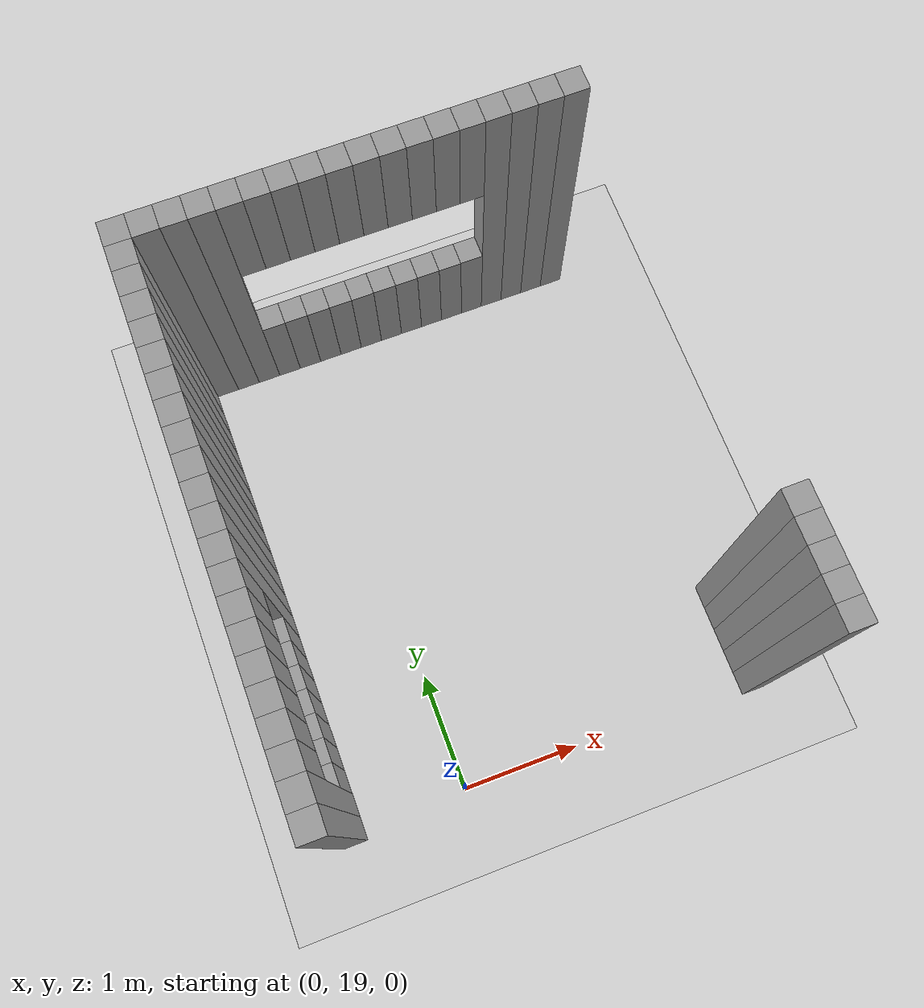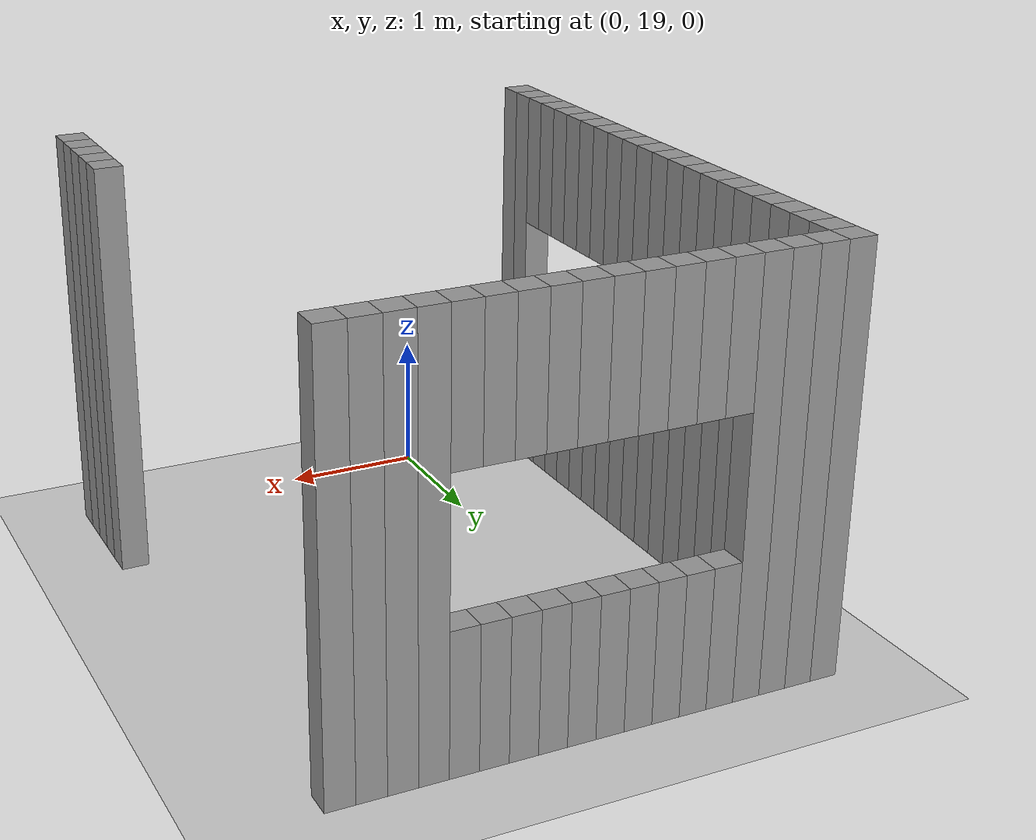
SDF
<sdf version="1.7">
 <world name="default">
  <model name="ground_plane">
   <static>1</static>
   <link name="link">
    <collision name="collision">
     <geometry><plane><normal>0 0 1</normal><size>100 100</size></plane></geometry>
     <surface>
      <contact><collide_bitmask>65535</collide_bitmask></contact>
      <friction><ode><mu>100</mu><mu2>50</mu2></ode></friction>
     </surface>
    </collision>
    <visual name="visual">
     <cast_shadows>0</cast_shadows>
     <geometry><plane><normal>0 0 1</normal><size>100 100</size></plane></geometry>
     <material>
      <script><uri>file://media/materials/scripts/gazebo.material</uri><name>Gazebo/Grey</name></script>
     </material>
    </visual>
   </link>
  </model>
  <model name="05222">
   <pose>-1 -1 0 0 -0 0</pose>
   <link name="Wall_945">
    <collision name="Wall_945_Collision">
     <geometry><box><size>0.2 0.2 3</size></box></geometry>
     <pose>0 0 1.5 0 -0 0</pose>
    </collision>
    <visual name="Wall_945_Visual">
     <pose>0 0 1.5 0 -0 0</pose>
     <geometry><box><size>0.2 0.2 3</size></box></geometry>
     <material>
      <script><uri>file://media/materials/scripts/gazebo.material</uri><name>Gazebo/Grey</name></script>
      <ambient>1 1 1 1</ambient>
     </material>
     <meta><layer>0</layer></meta>
    </visual>
    <pose>0.0 20.0 0 0 -0 0</pose>
   </link>
   <link name="Wall_946">
    <collision name="Wall_946_Collision">
     <geometry><box><size>0.2 0.2 3</size></box></geometry>
     <pose>0 0 1.5 0 -0 0</pose>
    </collision>
    <visual name="Wall_946_Visual">
     <pose>0 0 1.5 0 -0 0</pose>
     <geometry><box><size>0.2 0.2 3</size></box></geometry>
     <material>
      <script><uri>file://media/materials/scripts/gazebo.material</uri><name>Gazebo/Grey</name></script>
      <ambient>1 1 1 1</ambient>
     </material>
     <meta><layer>0</layer></meta>
    </visual>
    <pose>3.6 20.0 0 0 -0 0</pose>
   </link>
   <link name="Wall_950">
    <collision name="Wall_950_Collision">
     <geometry><box><size>0.2 0.2 3</size></box></geometry>
     <pose>0 0 1.5 0 -0 0</pose>
    </collision>
    <visual name="Wall_950_Visual">
     <pose>0 0 1.5 0 -0 0</pose>
     <geometry><box><size>0.2 0.2 3</size></box></geometry>
     <material>
      <script><uri>file://media/materials/scripts/gazebo.material</uri><name>Gazebo/Grey</name></script>
      <ambient>1 1 1 1</ambient>
     </material>
     <meta><layer>0</layer></meta>
    </visual>
    <pose>0.0 20.200000000000003 0 0 -0 0</pose>
   </link>
   <link name="Wall_951">
    <collision name="Wall_951_Collision">
     <geometry><box><size>0.2 0.2 3</size></box></geometry>
     <pose>0 0 1.5 0 -0 0</pose>
    </collision>
    <visual name="Wall_951_Visual">
     <pose>0 0 1.5 0 -0 0</pose>
     <geometry><box><size>0.2 0.2 3</size></box></geometry>
     <material>
      <script><uri>file://media/materials/scripts/gazebo.material</uri><name>Gazebo/Grey</name></script>
      <ambient>1 1 1 1</ambient>
     </material>
     <meta><layer>0</layer></meta>
    </visual>
    <pose>3.6 20.200000000000003 0 0 -0 0</pose>
   </link>
   <link name="Wall_955">
    <collision name="Wall_955_Collision">
     <geometry><box><size>0.2 0.2 1.0</size></box></geometry>
     <pose>0 0 0.5 0 -0 0</pose>
    </collision>
    <visual name="Wall_955_Visual">
     <pose>0 0 0.5 0 -0 0</pose>
     <geometry><box><size>0.2 0.2 1.0</size></box></geometry>
     <material>
      <script><uri>file://media/materials/scripts/gazebo.material</uri><name>Gazebo/Grey</name></script>
      <ambient>1 1 1 1</ambient>
     </material>
     <meta><layer>0</layer></meta>
    </visual>
    <pose>0.0 20.400000000000002 0 0 -0 0</pose>
   </link>
   <link name="Wall_956">
    <collision name="Wall_956_Collision">
     <geometry><box><size>0.2 0.2 1.0</size></box></geometry>
     <pose>0 0 2.5 0 -0 0</pose>
    </collision>
    <visual name="Wall_956_Visual">
     <pose>0 0 2.5 0 -0 0</pose>
     <geometry><box><size>0.2 0.2 1.0</size></box></geometry>
     <material>
      <script><uri>file://media/materials/scripts/gazebo.material</uri><name>Gazebo/Grey</name></script>
      <ambient>1 1 1 1</ambient>
     </material>
     <meta><layer>0</layer></meta>
    </visual>
    <pose>0.0 20.400000000000002 0 0 -0 0</pose>
   </link>
   <link name="Window_955">
    <collision name="Window_955_Collision">
     <geometry><box><size>0.2 0.2 1.0</size></box></geometry>
     <pose>0 0 1.5 0 -0 0</pose>
    </collision>
    <visual name="Wall_956_Visual">
     <pose>0 0 2.5 0 -0 0</pose>
     <geometry><box><size>0.2 0.2 1.0</size></box></geometry>
     <material>
      <script><uri>file://media/materials/scripts/gazebo.material</uri><name>Gazebo/Grey</name></script>
      <ambient>1 1 1 1</ambient>
     </material>
     <meta><layer>0</layer></meta>
    </visual>
    <pose>0.0 20.400000000000002 0 0 -0 0</pose>
   </link>
   <link name="Wall_957">
    <collision name="Wall_957_Collision">
     <geometry><box><size>0.2 0.2 3</size></box></geometry>
     <pose>0 0 1.5 0 -0 0</pose>
    </collision>
    <visual name="Wall_957_Visual">
     <pose>0 0 1.5 0 -0 0</pose>
     <geometry><box><size>0.2 0.2 3</size></box></geometry>
     <material>
      <script><uri>file://media/materials/scripts/gazebo.material</uri><name>Gazebo/Grey</name></script>
      <ambient>1 1 1 1</ambient>
     </material>
     <meta><layer>0</layer></meta>
    </visual>
    <pose>3.6 20.400000000000002 0 0 -0 0</pose>
   </link>
   <link name="Wall_961">
    <collision name="Wall_961_Collision">
     <geometry><box><size>0.2 0.2 1.0</size></box></geometry>
     <pose>0 0 0.5 0 -0 0</pose>
    </collision>
    <visual name="Wall_961_Visual">
     <pose>0 0 0.5 0 -0 0</pose>
     <geometry><box><size>0.2 0.2 1.0</size></box></geometry>
     <material>
      <script><uri>file://media/materials/scripts/gazebo.material</uri><name>Gazebo/Grey</name></script>
      <ambient>1 1 1 1</ambient>
     </material>
     <meta><layer>0</layer></meta>
    </visual>
    <pose>0.0 20.6 0 0 -0 0</pose>
   </link>
   <link name="Wall_962">
    <collision name="Wall_962_Collision">
     <geometry><box><size>0.2 0.2 1.0</size></box></geometry>
     <pose>0 0 2.5 0 -0 0</pose>
    </collision>
    <visual name="Wall_962_Visual">
     <pose>0 0 2.5 0 -0 0</pose>
     <geometry><box><size>0.2 0.2 1.0</size></box></geometry>
     <material>
      <script><uri>file://media/materials/scripts/gazebo.material</uri><name>Gazebo/Grey</name></script>
      <ambient>1 1 1 1</ambient>
     </material>
     <meta><layer>0</layer></meta>
    </visual>
    <pose>0.0 20.6 0 0 -0 0</pose>
   </link>
   <link name="Window_961">
    <collision name="Window_961_Collision">
     <geometry><box><size>0.2 0.2 1.0</size></box></geometry>
     <pose>0 0 1.5 0 -0 0</pose>
    </collision>
    <visual name="Wall_962_Visual">
     <pose>0 0 2.5 0 -0 0</pose>
     <geometry><box><size>0.2 0.2 1.0</size></box></geometry>
     <material>
      <script><uri>file://media/materials/scripts/gazebo.material</uri><name>Gazebo/Grey</name></script>
      <ambient>1 1 1 1</ambient>
     </material>
     <meta><layer>0</layer></meta>
    </visual>
    <pose>0.0 20.6 0 0 -0 0</pose>
   </link>
   <link name="Wall_963">
    <collision name="Wall_963_Collision">
     <geometry><box><size>0.2 0.2 3</size></box></geometry>
     <pose>0 0 1.5 0 -0 0</pose>
    </collision>
    <visual name="Wall_963_Visual">
     <pose>0 0 1.5 0 -0 0</pose>
     <geometry><box><size>0.2 0.2 3</size></box></geometry>
     <material>
      <script><uri>file://media/materials/scripts/gazebo.material</uri><name>Gazebo/Grey</name></script>
      <ambient>1 1 1 1</ambient>
     </material>
     <meta><layer>0</layer></meta>
    </visual>
    <pose>3.6 20.6 0 0 -0 0</pose>
   </link>
   <link name="Wall_967">
    <collision name="Wall_967_Collision">
     <geometry><box><size>0.2 0.2 1.0</size></box></geometry>
     <pose>0 0 0.5 0 -0 0</pose>
    </collision>
    <visual name="Wall_967_Visual">
     <pose>0 0 0.5 0 -0 0</pose>
     <geometry><box><size>0.2 0.2 1.0</size></box></geometry>
     <material>
      <script><uri>file://media/materials/scripts/gazebo.material</uri><name>Gazebo/Grey</name></script>
      <ambient>1 1 1 1</ambient>
     </material>
     <meta><layer>0</layer></meta>
    </visual>
    <pose>0.0 20.8 0 0 -0 0</pose>
   </link>
   <link name="Wall_968">
    <collision name="Wall_968_Collision">
     <geometry><box><size>0.2 0.2 1.0</size></box></geometry>
     <pose>0 0 2.5 0 -0 0</pose>
    </collision>
    <visual name="Wall_968_Visual">
     <pose>0 0 2.5 0 -0 0</pose>
     <geometry><box><size>0.2 0.2 1.0</size></box></geometry>
     <material>
      <script><uri>file://media/materials/scripts/gazebo.material</uri><name>Gazebo/Grey</name></script>
      <ambient>1 1 1 1</ambient>
     </material>
     <meta><layer>0</layer></meta>
    </visual>
    <pose>0.0 20.8 0 0 -0 0</pose>
   </link>
   <link name="Window_967">
    <collision name="Window_967_Collision">
     <geometry><box><size>0.2 0.2 1.0</size></box></geometry>
     <pose>0 0 1.5 0 -0 0</pose>
    </collision>
    <visual name="Wall_968_Visual">
     <pose>0 0 2.5 0 -0 0</pose>
     <geometry><box><size>0.2 0.2 1.0</size></box></geometry>
     <material>
      <script><uri>file://media/materials/scripts/gazebo.material</uri><name>Gazebo/Grey</name></script>
      <ambient>1 1 1 1</ambient>
     </material>
     <meta><layer>0</layer></meta>
    </visual>
    <pose>0.0 20.8 0 0 -0 0</pose>
   </link>
   <link name="Wall_969">
    <collision name="Wall_969_Collision">
     <geometry><box><size>0.2 0.2 3</size></box></geometry>
     <pose>0 0 1.5 0 -0 0</pose>
    </collision>
    <visual name="Wall_969_Visual">
     <pose>0 0 1.5 0 -0 0</pose>
     <geometry><box><size>0.2 0.2 3</size></box></geometry>
     <material>
      <script><uri>file://media/materials/scripts/gazebo.material</uri><name>Gazebo/Grey</name></script>
      <ambient>1 1 1 1</ambient>
     </material>
     <meta><layer>0</layer></meta>
    </visual>
    <pose>3.6 20.8 0 0 -0 0</pose>
   </link>
   <link name="Wall_973">
    <collision name="Wall_973_Collision">
     <geometry><box><size>0.2 0.2 1.0</size></box></geometry>
     <pose>0 0 0.5 0 -0 0</pose>
    </collision>
    <visual name="Wall_973_Visual">
     <pose>0 0 0.5 0 -0 0</pose>
     <geometry><box><size>0.2 0.2 1.0</size></box></geometry>
     <material>
      <script><uri>file://media/materials/scripts/gazebo.material</uri><name>Gazebo/Grey</name></script>
      <ambient>1 1 1 1</ambient>
     </material>
     <meta><layer>0</layer></meta>
    </visual>
    <pose>0.0 21.0 0 0 -0 0</pose>
   </link>
   <link name="Wall_974">
    <collision name="Wall_974_Collision">
     <geometry><box><size>0.2 0.2 1.0</size></box></geometry>
     <pose>0 0 2.5 0 -0 0</pose>
    </collision>
    <visual name="Wall_974_Visual">
     <pose>0 0 2.5 0 -0 0</pose>
     <geometry><box><size>0.2 0.2 1.0</size></box></geometry>
     <material>
      <script><uri>file://media/materials/scripts/gazebo.material</uri><name>Gazebo/Grey</name></script>
      <ambient>1 1 1 1</ambient>
     </material>
     <meta><layer>0</layer></meta>
    </visual>
    <pose>0.0 21.0 0 0 -0 0</pose>
   </link>
   <link name="Window_973">
    <collision name="Window_973_Collision">
     <geometry><box><size>0.2 0.2 1.0</size></box></geometry>
     <pose>0 0 1.5 0 -0 0</pose>
    </collision>
    <visual name="Wall_974_Visual">
     <pose>0 0 2.5 0 -0 0</pose>
     <geometry><box><size>0.2 0.2 1.0</size></box></geometry>
     <material>
      <script><uri>file://media/materials/scripts/gazebo.material</uri><name>Gazebo/Grey</name></script>
      <ambient>1 1 1 1</ambient>
     </material>
     <meta><layer>0</layer></meta>
    </visual>
    <pose>0.0 21.0 0 0 -0 0</pose>
   </link>
   <link name="Wall_979">
    <collision name="Wall_979_Collision">
     <geometry><box><size>0.2 0.2 1.0</size></box></geometry>
     <pose>0 0 0.5 0 -0 0</pose>
    </collision>
    <visual name="Wall_979_Visual">
     <pose>0 0 0.5 0 -0 0</pose>
     <geometry><box><size>0.2 0.2 1.0</size></box></geometry>
     <material>
      <script><uri>file://media/materials/scripts/gazebo.material</uri><name>Gazebo/Grey</name></script>
      <ambient>1 1 1 1</ambient>
     </material>
     <meta><layer>0</layer></meta>
    </visual>
    <pose>0.0 21.200000000000003 0 0 -0 0</pose>
   </link>
   <link name="Wall_980">
    <collision name="Wall_980_Collision">
     <geometry><box><size>0.2 0.2 1.0</size></box></geometry>
     <pose>0 0 2.5 0 -0 0</pose>
    </collision>
    <visual name="Wall_980_Visual">
     <pose>0 0 2.5 0 -0 0</pose>
     <geometry><box><size>0.2 0.2 1.0</size></box></geometry>
     <material>
      <script><uri>file://media/materials/scripts/gazebo.material</uri><name>Gazebo/Grey</name></script>
      <ambient>1 1 1 1</ambient>
     </material>
     <meta><layer>0</layer></meta>
    </visual>
    <pose>0.0 21.200000000000003 0 0 -0 0</pose>
   </link>
   <link name="Window_979">
    <collision name="Window_979_Collision">
     <geometry><box><size>0.2 0.2 1.0</size></box></geometry>
     <pose>0 0 1.5 0 -0 0</pose>
    </collision>
    <visual name="Wall_980_Visual">
     <pose>0 0 2.5 0 -0 0</pose>
     <geometry><box><size>0.2 0.2 1.0</size></box></geometry>
     <material>
      <script><uri>file://media/materials/scripts/gazebo.material</uri><name>Gazebo/Grey</name></script>
      <ambient>1 1 1 1</ambient>
     </material>
     <meta><layer>0</layer></meta>
    </visual>
    <pose>0.0 21.200000000000003 0 0 -0 0</pose>
   </link>
   <link name="Wall_986">
    <collision name="Wall_986_Collision">
     <geometry><box><size>0.2 0.2 1.0</size></box></geometry>
     <pose>0 0 0.5 0 -0 0</pose>
    </collision>
    <visual name="Wall_986_Visual">
     <pose>0 0 0.5 0 -0 0</pose>
     <geometry><box><size>0.2 0.2 1.0</size></box></geometry>
     <material>
      <script><uri>file://media/materials/scripts/gazebo.material</uri><name>Gazebo/Grey</name></script>
      <ambient>1 1 1 1</ambient>
     </material>
     <meta><layer>0</layer></meta>
    </visual>
    <pose>0.0 21.400000000000002 0 0 -0 0</pose>
   </link>
   <link name="Wall_987">
    <collision name="Wall_987_Collision">
     <geometry><box><size>0.2 0.2 1.0</size></box></geometry>
     <pose>0 0 2.5 0 -0 0</pose>
    </collision>
    <visual name="Wall_987_Visual">
     <pose>0 0 2.5 0 -0 0</pose>
     <geometry><box><size>0.2 0.2 1.0</size></box></geometry>
     <material>
      <script><uri>file://media/materials/scripts/gazebo.material</uri><name>Gazebo/Grey</name></script>
      <ambient>1 1 1 1</ambient>
     </material>
     <meta><layer>0</layer></meta>
    </visual>
    <pose>0.0 21.400000000000002 0 0 -0 0</pose>
   </link>
   <link name="Window_986">
    <collision name="Window_986_Collision">
     <geometry><box><size>0.2 0.2 1.0</size></box></geometry>
     <pose>0 0 1.5 0 -0 0</pose>
    </collision>
    <visual name="Wall_987_Visual">
     <pose>0 0 2.5 0 -0 0</pose>
     <geometry><box><size>0.2 0.2 1.0</size></box></geometry>
     <material>
      <script><uri>file://media/materials/scripts/gazebo.material</uri><name>Gazebo/Grey</name></script>
      <ambient>1 1 1 1</ambient>
     </material>
     <meta><layer>0</layer></meta>
    </visual>
    <pose>0.0 21.400000000000002 0 0 -0 0</pose>
   </link>
   <link name="Wall_993">
    <collision name="Wall_993_Collision">
     <geometry><box><size>0.2 0.2 1.0</size></box></geometry>
     <pose>0 0 0.5 0 -0 0</pose>
    </collision>
    <visual name="Wall_993_Visual">
     <pose>0 0 0.5 0 -0 0</pose>
     <geometry><box><size>0.2 0.2 1.0</size></box></geometry>
     <material>
      <script><uri>file://media/materials/scripts/gazebo.material</uri><name>Gazebo/Grey</name></script>
      <ambient>1 1 1 1</ambient>
     </material>
     <meta><layer>0</layer></meta>
    </visual>
    <pose>0.0 21.6 0 0 -0 0</pose>
   </link>
   <link name="Wall_994">
    <collision name="Wall_994_Collision">
     <geometry><box><size>0.2 0.2 1.0</size></box></geometry>
     <pose>0 0 2.5 0 -0 0</pose>
    </collision>
    <visual name="Wall_994_Visual">
     <pose>0 0 2.5 0 -0 0</pose>
     <geometry><box><size>0.2 0.2 1.0</size></box></geometry>
     <material>
      <script><uri>file://media/materials/scripts/gazebo.material</uri><name>Gazebo/Grey</name></script>
      <ambient>1 1 1 1</ambient>
     </material>
     <meta><layer>0</layer></meta>
    </visual>
    <pose>0.0 21.6 0 0 -0 0</pose>
   </link>
   <link name="Window_993">
    <collision name="Window_993_Collision">
     <geometry><box><size>0.2 0.2 1.0</size></box></geometry>
     <pose>0 0 1.5 0 -0 0</pose>
    </collision>
    <visual name="Wall_994_Visual">
     <pose>0 0 2.5 0 -0 0</pose>
     <geometry><box><size>0.2 0.2 1.0</size></box></geometry>
     <material>
      <script><uri>file://media/materials/scripts/gazebo.material</uri><name>Gazebo/Grey</name></script>
      <ambient>1 1 1 1</ambient>
     </material>
     <meta><layer>0</layer></meta>
    </visual>
    <pose>0.0 21.6 0 0 -0 0</pose>
   </link>
   <link name="Wall_1000">
    <collision name="Wall_1000_Collision">
     <geometry><box><size>0.2 0.2 3</size></box></geometry>
     <pose>0 0 1.5 0 -0 0</pose>
    </collision>
    <visual name="Wall_1000_Visual">
     <pose>0 0 1.5 0 -0 0</pose>
     <geometry><box><size>0.2 0.2 3</size></box></geometry>
     <material>
      <script><uri>file://media/materials/scripts/gazebo.material</uri><name>Gazebo/Grey</name></script>
      <ambient>1 1 1 1</ambient>
     </material>
     <meta><layer>0</layer></meta>
    </visual>
    <pose>0.0 21.8 0 0 -0 0</pose>
   </link>
   <link name="Wall_1006">
    <collision name="Wall_1006_Collision">
     <geometry><box><size>0.2 0.2 3</size></box></geometry>
     <pose>0 0 1.5 0 -0 0</pose>
    </collision>
    <visual name="Wall_1006_Visual">
     <pose>0 0 1.5 0 -0 0</pose>
     <geometry><box><size>0.2 0.2 3</size></box></geometry>
     <material>
      <script><uri>file://media/materials/scripts/gazebo.material</uri><name>Gazebo/Grey</name></script>
      <ambient>1 1 1 1</ambient>
     </material>
     <meta><layer>0</layer></meta>
    </visual>
    <pose>0.0 22.0 0 0 -0 0</pose>
   </link>
   <link name="Wall_1012">
    <collision name="Wall_1012_Collision">
     <geometry><box><size>0.2 0.2 3</size></box></geometry>
     <pose>0 0 1.5 0 -0 0</pose>
    </collision>
    <visual name="Wall_1012_Visual">
     <pose>0 0 1.5 0 -0 0</pose>
     <geometry><box><size>0.2 0.2 3</size></box></geometry>
     <material>
      <script><uri>file://media/materials/scripts/gazebo.material</uri><name>Gazebo/Grey</name></script>
      <ambient>1 1 1 1</ambient>
     </material>
     <meta><layer>0</layer></meta>
    </visual>
    <pose>0.0 22.200000000000003 0 0 -0 0</pose>
   </link>
   <link name="Wall_1018">
    <collision name="Wall_1018_Collision">
     <geometry><box><size>0.2 0.2 3</size></box></geometry>
     <pose>0 0 1.5 0 -0 0</pose>
    </collision>
    <visual name="Wall_1018_Visual">
     <pose>0 0 1.5 0 -0 0</pose>
     <geometry><box><size>0.2 0.2 3</size></box></geometry>
     <material>
      <script><uri>file://media/materials/scripts/gazebo.material</uri><name>Gazebo/Grey</name></script>
      <ambient>1 1 1 1</ambient>
     </material>
     <meta><layer>0</layer></meta>
    </visual>
    <pose>0.0 22.400000000000002 0 0 -0 0</pose>
   </link>
   <link name="Wall_1024">
    <collision name="Wall_1024_Collision">
     <geometry><box><size>0.2 0.2 3</size></box></geometry>
     <pose>0 0 1.5 0 -0 0</pose>
    </collision>
    <visual name="Wall_1024_Visual">
     <pose>0 0 1.5 0 -0 0</pose>
     <geometry><box><size>0.2 0.2 3</size></box></geometry>
     <material>
      <script><uri>file://media/materials/scripts/gazebo.material</uri><name>Gazebo/Grey</name></script>
      <ambient>1 1 1 1</ambient>
     </material>
     <meta><layer>0</layer></meta>
    </visual>
    <pose>0.0 22.6 0 0 -0 0</pose>
   </link>
   <link name="Wall_1030">
    <collision name="Wall_1030_Collision">
     <geometry><box><size>0.2 0.2 3</size></box></geometry>
     <pose>0 0 1.5 0 -0 0</pose>
    </collision>
    <visual name="Wall_1030_Visual">
     <pose>0 0 1.5 0 -0 0</pose>
     <geometry><box><size>0.2 0.2 3</size></box></geometry>
     <material>
      <script><uri>file://media/materials/scripts/gazebo.material</uri><name>Gazebo/Grey</name></script>
      <ambient>1 1 1 1</ambient>
     </material>
     <meta><layer>0</layer></meta>
    </visual>
    <pose>0.0 22.8 0 0 -0 0</pose>
   </link>
   <link name="Wall_1036">
    <collision name="Wall_1036_Collision">
     <geometry><box><size>0.2 0.2 3</size></box></geometry>
     <pose>0 0 1.5 0 -0 0</pose>
    </collision>
    <visual name="Wall_1036_Visual">
     <pose>0 0 1.5 0 -0 0</pose>
     <geometry><box><size>0.2 0.2 3</size></box></geometry>
     <material>
      <script><uri>file://media/materials/scripts/gazebo.material</uri><name>Gazebo/Grey</name></script>
      <ambient>1 1 1 1</ambient>
     </material>
     <meta><layer>0</layer></meta>
    </visual>
    <pose>0.0 23.0 0 0 -0 0</pose>
   </link>
   <link name="Wall_1042">
    <collision name="Wall_1042_Collision">
     <geometry><box><size>0.2 0.2 3</size></box></geometry>
     <pose>0 0 1.5 0 -0 0</pose>
    </collision>
    <visual name="Wall_1042_Visual">
     <pose>0 0 1.5 0 -0 0</pose>
     <geometry><box><size>0.2 0.2 3</size></box></geometry>
     <material>
      <script><uri>file://media/materials/scripts/gazebo.material</uri><name>Gazebo/Grey</name></script>
      <ambient>1 1 1 1</ambient>
     </material>
     <meta><layer>0</layer></meta>
    </visual>
    <pose>0.0 23.200000000000003 0 0 -0 0</pose>
   </link>
   <link name="Wall_1047">
    <collision name="Wall_1047_Collision">
     <geometry><box><size>0.2 0.2 3</size></box></geometry>
     <pose>0 0 1.5 0 -0 0</pose>
    </collision>
    <visual name="Wall_1047_Visual">
     <pose>0 0 1.5 0 -0 0</pose>
     <geometry><box><size>0.2 0.2 3</size></box></geometry>
     <material>
      <script><uri>file://media/materials/scripts/gazebo.material</uri><name>Gazebo/Grey</name></script>
      <ambient>1 1 1 1</ambient>
     </material>
     <meta><layer>0</layer></meta>
    </visual>
    <pose>0.0 23.400000000000002 0 0 -0 0</pose>
   </link>
   <link name="Wall_1052">
    <collision name="Wall_1052_Collision">
     <geometry><box><size>0.2 0.2 3</size></box></geometry>
     <pose>0 0 1.5 0 -0 0</pose>
    </collision>
    <visual name="Wall_1052_Visual">
     <pose>0 0 1.5 0 -0 0</pose>
     <geometry><box><size>0.2 0.2 3</size></box></geometry>
     <material>
      <script><uri>file://media/materials/scripts/gazebo.material</uri><name>Gazebo/Grey</name></script>
      <ambient>1 1 1 1</ambient>
     </material>
     <meta><layer>0</layer></meta>
    </visual>
    <pose>0.0 23.6 0 0 -0 0</pose>
   </link>
   <link name="Wall_1057">
    <collision name="Wall_1057_Collision">
     <geometry><box><size>0.2 0.2 3</size></box></geometry>
     <pose>0 0 1.5 0 -0 0</pose>
    </collision>
    <visual name="Wall_1057_Visual">
     <pose>0 0 1.5 0 -0 0</pose>
     <geometry><box><size>0.2 0.2 3</size></box></geometry>
     <material>
      <script><uri>file://media/materials/scripts/gazebo.material</uri><name>Gazebo/Grey</name></script>
      <ambient>1 1 1 1</ambient>
     </material>
     <meta><layer>0</layer></meta>
    </visual>
    <pose>0.0 23.8 0 0 -0 0</pose>
   </link>
   <link name="Wall_1062">
    <collision name="Wall_1062_Collision">
     <geometry><box><size>0.2 0.2 3</size></box></geometry>
     <pose>0 0 1.5 0 -0 0</pose>
    </collision>
    <visual name="Wall_1062_Visual">
     <pose>0 0 1.5 0 -0 0</pose>
     <geometry><box><size>0.2 0.2 3</size></box></geometry>
     <material>
      <script><uri>file://media/materials/scripts/gazebo.material</uri><name>Gazebo/Grey</name></script>
      <ambient>1 1 1 1</ambient>
     </material>
     <meta><layer>0</layer></meta>
    </visual>
    <pose>0.0 24.0 0 0 -0 0</pose>
   </link>
   <link name="Wall_1067">
    <collision name="Wall_1067_Collision">
     <geometry><box><size>0.2 0.2 3</size></box></geometry>
     <pose>0 0 1.5 0 -0 0</pose>
    </collision>
    <visual name="Wall_1067_Visual">
     <pose>0 0 1.5 0 -0 0</pose>
     <geometry><box><size>0.2 0.2 3</size></box></geometry>
     <material>
      <script><uri>file://media/materials/scripts/gazebo.material</uri><name>Gazebo/Grey</name></script>
      <ambient>1 1 1 1</ambient>
     </material>
     <meta><layer>0</layer></meta>
    </visual>
    <pose>0.0 24.200000000000003 0 0 -0 0</pose>
   </link>
   <link name="Wall_1068">
    <collision name="Wall_1068_Collision">
     <geometry><box><size>0.2 0.2 3</size></box></geometry>
     <pose>0 0 1.5 0 -0 0</pose>
    </collision>
    <visual name="Wall_1068_Visual">
     <pose>0 0 1.5 0 -0 0</pose>
     <geometry><box><size>0.2 0.2 3</size></box></geometry>
     <material>
      <script><uri>file://media/materials/scripts/gazebo.material</uri><name>Gazebo/Grey</name></script>
      <ambient>1 1 1 1</ambient>
     </material>
     <meta><layer>0</layer></meta>
    </visual>
    <pose>0.2 24.200000000000003 0 0 -0 0</pose>
   </link>
   <link name="Wall_1069">
    <collision name="Wall_1069_Collision">
     <geometry><box><size>0.2 0.2 3</size></box></geometry>
     <pose>0 0 1.5 0 -0 0</pose>
    </collision>
    <visual name="Wall_1069_Visual">
     <pose>0 0 1.5 0 -0 0</pose>
     <geometry><box><size>0.2 0.2 3</size></box></geometry>
     <material>
      <script><uri>file://media/materials/scripts/gazebo.material</uri><name>Gazebo/Grey</name></script>
      <ambient>1 1 1 1</ambient>
     </material>
     <meta><layer>0</layer></meta>
    </visual>
    <pose>0.4 24.200000000000003 0 0 -0 0</pose>
   </link>
   <link name="Wall_1070">
    <collision name="Wall_1070_Collision">
     <geometry><box><size>0.2 0.2 3</size></box></geometry>
     <pose>0 0 1.5 0 -0 0</pose>
    </collision>
    <visual name="Wall_1070_Visual">
     <pose>0 0 1.5 0 -0 0</pose>
     <geometry><box><size>0.2 0.2 3</size></box></geometry>
     <material>
      <script><uri>file://media/materials/scripts/gazebo.material</uri><name>Gazebo/Grey</name></script>
      <ambient>1 1 1 1</ambient>
     </material>
     <meta><layer>0</layer></meta>
    </visual>
    <pose>0.6000000000000001 24.200000000000003 0 0 -0 0</pose>
   </link>
   <link name="Wall_1071">
    <collision name="Wall_1071_Collision">
     <geometry><box><size>0.2 0.2 1.0</size></box></geometry>
     <pose>0 0 0.5 0 -0 0</pose>
    </collision>
    <visual name="Wall_1071_Visual">
     <pose>0 0 0.5 0 -0 0</pose>
     <geometry><box><size>0.2 0.2 1.0</size></box></geometry>
     <material>
      <script><uri>file://media/materials/scripts/gazebo.material</uri><name>Gazebo/Grey</name></script>
      <ambient>1 1 1 1</ambient>
     </material>
     <meta><layer>0</layer></meta>
    </visual>
    <pose>0.8 24.200000000000003 0 0 -0 0</pose>
   </link>
   <link name="Wall_1072">
    <collision name="Wall_1072_Collision">
     <geometry><box><size>0.2 0.2 1.0</size></box></geometry>
     <pose>0 0 2.5 0 -0 0</pose>
    </collision>
    <visual name="Wall_1072_Visual">
     <pose>0 0 2.5 0 -0 0</pose>
     <geometry><box><size>0.2 0.2 1.0</size></box></geometry>
     <material>
      <script><uri>file://media/materials/scripts/gazebo.material</uri><name>Gazebo/Grey</name></script>
      <ambient>1 1 1 1</ambient>
     </material>
     <meta><layer>0</layer></meta>
    </visual>
    <pose>0.8 24.200000000000003 0 0 -0 0</pose>
   </link>
   <link name="Window_1071">
    <collision name="Window_1071_Collision">
     <geometry><box><size>0.2 0.2 1.0</size></box></geometry>
     <pose>0 0 1.5 0 -0 0</pose>
    </collision>
    <visual name="Wall_1072_Visual">
     <pose>0 0 2.5 0 -0 0</pose>
     <geometry><box><size>0.2 0.2 1.0</size></box></geometry>
     <material>
      <script><uri>file://media/materials/scripts/gazebo.material</uri><name>Gazebo/Grey</name></script>
      <ambient>1 1 1 1</ambient>
     </material>
     <meta><layer>0</layer></meta>
    </visual>
    <pose>0.8 24.200000000000003 0 0 -0 0</pose>
   </link>
   <link name="Wall_1073">
    <collision name="Wall_1073_Collision">
     <geometry><box><size>0.2 0.2 1.0</size></box></geometry>
     <pose>0 0 0.5 0 -0 0</pose>
    </collision>
    <visual name="Wall_1073_Visual">
     <pose>0 0 0.5 0 -0 0</pose>
     <geometry><box><size>0.2 0.2 1.0</size></box></geometry>
     <material>
      <script><uri>file://media/materials/scripts/gazebo.material</uri><name>Gazebo/Grey</name></script>
      <ambient>1 1 1 1</ambient>
     </material>
     <meta><layer>0</layer></meta>
    </visual>
    <pose>1.0 24.200000000000003 0 0 -0 0</pose>
   </link>
   <link name="Wall_1074">
    <collision name="Wall_1074_Collision">
     <geometry><box><size>0.2 0.2 1.0</size></box></geometry>
     <pose>0 0 2.5 0 -0 0</pose>
    </collision>
    <visual name="Wall_1074_Visual">
     <pose>0 0 2.5 0 -0 0</pose>
     <geometry><box><size>0.2 0.2 1.0</size></box></geometry>
     <material>
      <script><uri>file://media/materials/scripts/gazebo.material</uri><name>Gazebo/Grey</name></script>
      <ambient>1 1 1 1</ambient>
     </material>
     <meta><layer>0</layer></meta>
    </visual>
    <pose>1.0 24.200000000000003 0 0 -0 0</pose>
   </link>
   <link name="Window_1073">
    <collision name="Window_1073_Collision">
     <geometry><box><size>0.2 0.2 1.0</size></box></geometry>
     <pose>0 0 1.5 0 -0 0</pose>
    </collision>
    <visual name="Wall_1074_Visual">
     <pose>0 0 2.5 0 -0 0</pose>
     <geometry><box><size>0.2 0.2 1.0</size></box></geometry>
     <material>
      <script><uri>file://media/materials/scripts/gazebo.material</uri><name>Gazebo/Grey</name></script>
      <ambient>1 1 1 1</ambient>
     </material>
     <meta><layer>0</layer></meta>
    </visual>
    <pose>1.0 24.200000000000003 0 0 -0 0</pose>
   </link>
   <link name="Wall_1075">
    <collision name="Wall_1075_Collision">
     <geometry><box><size>0.2 0.2 1.0</size></box></geometry>
     <pose>0 0 0.5 0 -0 0</pose>
    </collision>
    <visual name="Wall_1075_Visual">
     <pose>0 0 0.5 0 -0 0</pose>
     <geometry><box><size>0.2 0.2 1.0</size></box></geometry>
     <material>
      <script><uri>file://media/materials/scripts/gazebo.material</uri><name>Gazebo/Grey</name></script>
      <ambient>1 1 1 1</ambient>
     </material>
     <meta><layer>0</layer></meta>
    </visual>
    <pose>1.2000000000000002 24.200000000000003 0 0 -0 0</pose>
   </link>
   <link name="Wall_1076">
    <collision name="Wall_1076_Collision">
     <geometry><box><size>0.2 0.2 1.0</size></box></geometry>
     <pose>0 0 2.5 0 -0 0</pose>
    </collision>
    <visual name="Wall_1076_Visual">
     <pose>0 0 2.5 0 -0 0</pose>
     <geometry><box><size>0.2 0.2 1.0</size></box></geometry>
     <material>
      <script><uri>file://media/materials/scripts/gazebo.material</uri><name>Gazebo/Grey</name></script>
      <ambient>1 1 1 1</ambient>
     </material>
     <meta><layer>0</layer></meta>
    </visual>
    <pose>1.2000000000000002 24.200000000000003 0 0 -0 0</pose>
   </link>
   <link name="Window_1075">
    <collision name="Window_1075_Collision">
     <geometry><box><size>0.2 0.2 1.0</size></box></geometry>
     <pose>0 0 1.5 0 -0 0</pose>
    </collision>
    <visual name="Wall_1076_Visual">
     <pose>0 0 2.5 0 -0 0</pose>
     <geometry><box><size>0.2 0.2 1.0</size></box></geometry>
     <material>
      <script><uri>file://media/materials/scripts/gazebo.material</uri><name>Gazebo/Grey</name></script>
      <ambient>1 1 1 1</ambient>
     </material>
     <meta><layer>0</layer></meta>
    </visual>
    <pose>1.2000000000000002 24.200000000000003 0 0 -0 0</pose>
   </link>
   <link name="Wall_1077">
    <collision name="Wall_1077_Collision">
     <geometry><box><size>0.2 0.2 1.0</size></box></geometry>
     <pose>0 0 0.5 0 -0 0</pose>
    </collision>
    <visual name="Wall_1077_Visual">
     <pose>0 0 0.5 0 -0 0</pose>
     <geometry><box><size>0.2 0.2 1.0</size></box></geometry>
     <material>
      <script><uri>file://media/materials/scripts/gazebo.material</uri><name>Gazebo/Grey</name></script>
      <ambient>1 1 1 1</ambient>
     </material>
     <meta><layer>0</layer></meta>
    </visual>
    <pose>1.4000000000000001 24.200000000000003 0 0 -0 0</pose>
   </link>
   <link name="Wall_1078">
    <collision name="Wall_1078_Collision">
     <geometry><box><size>0.2 0.2 1.0</size></box></geometry>
     <pose>0 0 2.5 0 -0 0</pose>
    </collision>
    <visual name="Wall_1078_Visual">
     <pose>0 0 2.5 0 -0 0</pose>
     <geometry><box><size>0.2 0.2 1.0</size></box></geometry>
     <material>
      <script><uri>file://media/materials/scripts/gazebo.material</uri><name>Gazebo/Grey</name></script>
      <ambient>1 1 1 1</ambient>
     </material>
     <meta><layer>0</layer></meta>
    </visual>
    <pose>1.4000000000000001 24.200000000000003 0 0 -0 0</pose>
   </link>
   <link name="Window_1077">
    <collision name="Window_1077_Collision">
     <geometry><box><size>0.2 0.2 1.0</size></box></geometry>
     <pose>0 0 1.5 0 -0 0</pose>
    </collision>
    <visual name="Wall_1078_Visual">
     <pose>0 0 2.5 0 -0 0</pose>
     <geometry><box><size>0.2 0.2 1.0</size></box></geometry>
     <material>
      <script><uri>file://media/materials/scripts/gazebo.material</uri><name>Gazebo/Grey</name></script>
      <ambient>1 1 1 1</ambient>
     </material>
     <meta><layer>0</layer></meta>
    </visual>
    <pose>1.4000000000000001 24.200000000000003 0 0 -0 0</pose>
   </link>
   <link name="Wall_1079">
    <collision name="Wall_1079_Collision">
     <geometry><box><size>0.2 0.2 1.0</size></box></geometry>
     <pose>0 0 0.5 0 -0 0</pose>
    </collision>
    <visual name="Wall_1079_Visual">
     <pose>0 0 0.5 0 -0 0</pose>
     <geometry><box><size>0.2 0.2 1.0</size></box></geometry>
     <material>
      <script><uri>file://media/materials/scripts/gazebo.material</uri><name>Gazebo/Grey</name></script>
      <ambient>1 1 1 1</ambient>
     </material>
     <meta><layer>0</layer></meta>
    </visual>
    <pose>1.6 24.200000000000003 0 0 -0 0</pose>
   </link>
   <link name="Wall_1080">
    <collision name="Wall_1080_Collision">
     <geometry><box><size>0.2 0.2 1.0</size></box></geometry>
     <pose>0 0 2.5 0 -0 0</pose>
    </collision>
    <visual name="Wall_1080_Visual">
     <pose>0 0 2.5 0 -0 0</pose>
     <geometry><box><size>0.2 0.2 1.0</size></box></geometry>
     <material>
      <script><uri>file://media/materials/scripts/gazebo.material</uri><name>Gazebo/Grey</name></script>
      <ambient>1 1 1 1</ambient>
     </material>
     <meta><layer>0</layer></meta>
    </visual>
    <pose>1.6 24.200000000000003 0 0 -0 0</pose>
   </link>
   <link name="Window_1079">
    <collision name="Window_1079_Collision">
     <geometry><box><size>0.2 0.2 1.0</size></box></geometry>
     <pose>0 0 1.5 0 -0 0</pose>
    </collision>
    <visual name="Wall_1080_Visual">
     <pose>0 0 2.5 0 -0 0</pose>
     <geometry><box><size>0.2 0.2 1.0</size></box></geometry>
     <material>
      <script><uri>file://media/materials/scripts/gazebo.material</uri><name>Gazebo/Grey</name></script>
      <ambient>1 1 1 1</ambient>
     </material>
     <meta><layer>0</layer></meta>
    </visual>
    <pose>1.6 24.200000000000003 0 0 -0 0</pose>
   </link>
   <link name="Wall_1081">
    <collision name="Wall_1081_Collision">
     <geometry><box><size>0.2 0.2 1.0</size></box></geometry>
     <pose>0 0 0.5 0 -0 0</pose>
    </collision>
    <visual name="Wall_1081_Visual">
     <pose>0 0 0.5 0 -0 0</pose>
     <geometry><box><size>0.2 0.2 1.0</size></box></geometry>
     <material>
      <script><uri>file://media/materials/scripts/gazebo.material</uri><name>Gazebo/Grey</name></script>
      <ambient>1 1 1 1</ambient>
     </material>
     <meta><layer>0</layer></meta>
    </visual>
    <pose>1.8 24.200000000000003 0 0 -0 0</pose>
   </link>
   <link name="Wall_1082">
    <collision name="Wall_1082_Collision">
     <geometry><box><size>0.2 0.2 1.0</size></box></geometry>
     <pose>0 0 2.5 0 -0 0</pose>
    </collision>
    <visual name="Wall_1082_Visual">
     <pose>0 0 2.5 0 -0 0</pose>
     <geometry><box><size>0.2 0.2 1.0</size></box></geometry>
     <material>
      <script><uri>file://media/materials/scripts/gazebo.material</uri><name>Gazebo/Grey</name></script>
      <ambient>1 1 1 1</ambient>
     </material>
     <meta><layer>0</layer></meta>
    </visual>
    <pose>1.8 24.200000000000003 0 0 -0 0</pose>
   </link>
   <link name="Window_1081">
    <collision name="Window_1081_Collision">
     <geometry><box><size>0.2 0.2 1.0</size></box></geometry>
     <pose>0 0 1.5 0 -0 0</pose>
    </collision>
    <visual name="Wall_1082_Visual">
     <pose>0 0 2.5 0 -0 0</pose>
     <geometry><box><size>0.2 0.2 1.0</size></box></geometry>
     <material>
      <script><uri>file://media/materials/scripts/gazebo.material</uri><name>Gazebo/Grey</name></script>
      <ambient>1 1 1 1</ambient>
     </material>
     <meta><layer>0</layer></meta>
    </visual>
    <pose>1.8 24.200000000000003 0 0 -0 0</pose>
   </link>
   <link name="Wall_1083">
    <collision name="Wall_1083_Collision">
     <geometry><box><size>0.2 0.2 1.0</size></box></geometry>
     <pose>0 0 0.5 0 -0 0</pose>
    </collision>
    <visual name="Wall_1083_Visual">
     <pose>0 0 0.5 0 -0 0</pose>
     <geometry><box><size>0.2 0.2 1.0</size></box></geometry>
     <material>
      <script><uri>file://media/materials/scripts/gazebo.material</uri><name>Gazebo/Grey</name></script>
      <ambient>1 1 1 1</ambient>
     </material>
     <meta><layer>0</layer></meta>
    </visual>
    <pose>2.0 24.200000000000003 0 0 -0 0</pose>
   </link>
   <link name="Wall_1084">
    <collision name="Wall_1084_Collision">
     <geometry><box><size>0.2 0.2 1.0</size></box></geometry>
     <pose>0 0 2.5 0 -0 0</pose>
    </collision>
    <visual name="Wall_1084_Visual">
     <pose>0 0 2.5 0 -0 0</pose>
     <geometry><box><size>0.2 0.2 1.0</size></box></geometry>
     <material>
      <script><uri>file://media/materials/scripts/gazebo.material</uri><name>Gazebo/Grey</name></script>
      <ambient>1 1 1 1</ambient>
     </material>
     <meta><layer>0</layer></meta>
    </visual>
    <pose>2.0 24.200000000000003 0 0 -0 0</pose>
   </link>
   <link name="Window_1083">
    <collision name="Window_1083_Collision">
     <geometry><box><size>0.2 0.2 1.0</size></box></geometry>
     <pose>0 0 1.5 0 -0 0</pose>
    </collision>
    <visual name="Wall_1084_Visual">
     <pose>0 0 2.5 0 -0 0</pose>
     <geometry><box><size>0.2 0.2 1.0</size></box></geometry>
     <material>
      <script><uri>file://media/materials/scripts/gazebo.material</uri><name>Gazebo/Grey</name></script>
      <ambient>1 1 1 1</ambient>
     </material>
     <meta><layer>0</layer></meta>
    </visual>
    <pose>2.0 24.200000000000003 0 0 -0 0</pose>
   </link>
   <link name="Wall_1085">
    <collision name="Wall_1085_Collision">
     <geometry><box><size>0.2 0.2 1.0</size></box></geometry>
     <pose>0 0 0.5 0 -0 0</pose>
    </collision>
    <visual name="Wall_1085_Visual">
     <pose>0 0 0.5 0 -0 0</pose>
     <geometry><box><size>0.2 0.2 1.0</size></box></geometry>
     <material>
      <script><uri>file://media/materials/scripts/gazebo.material</uri><name>Gazebo/Grey</name></script>
      <ambient>1 1 1 1</ambient>
     </material>
     <meta><layer>0</layer></meta>
    </visual>
    <pose>2.2 24.200000000000003 0 0 -0 0</pose>
   </link>
   <link name="Wall_1086">
    <collision name="Wall_1086_Collision">
     <geometry><box><size>0.2 0.2 1.0</size></box></geometry>
     <pose>0 0 2.5 0 -0 0</pose>
    </collision>
    <visual name="Wall_1086_Visual">
     <pose>0 0 2.5 0 -0 0</pose>
     <geometry><box><size>0.2 0.2 1.0</size></box></geometry>
     <material>
      <script><uri>file://media/materials/scripts/gazebo.material</uri><name>Gazebo/Grey</name></script>
      <ambient>1 1 1 1</ambient>
     </material>
     <meta><layer>0</layer></meta>
    </visual>
    <pose>2.2 24.200000000000003 0 0 -0 0</pose>
   </link>
   <link name="Window_1085">
    <collision name="Window_1085_Collision">
     <geometry><box><size>0.2 0.2 1.0</size></box></geometry>
     <pose>0 0 1.5 0 -0 0</pose>
    </collision>
    <visual name="Wall_1086_Visual">
     <pose>0 0 2.5 0 -0 0</pose>
     <geometry><box><size>0.2 0.2 1.0</size></box></geometry>
     <material>
      <script><uri>file://media/materials/scripts/gazebo.material</uri><name>Gazebo/Grey</name></script>
      <ambient>1 1 1 1</ambient>
     </material>
     <meta><layer>0</layer></meta>
    </visual>
    <pose>2.2 24.200000000000003 0 0 -0 0</pose>
   </link>
   <link name="Wall_1087">
    <collision name="Wall_1087_Collision">
     <geometry><box><size>0.2 0.2 1.0</size></box></geometry>
     <pose>0 0 0.5 0 -0 0</pose>
    </collision>
    <visual name="Wall_1087_Visual">
     <pose>0 0 0.5 0 -0 0</pose>
     <geometry><box><size>0.2 0.2 1.0</size></box></geometry>
     <material>
      <script><uri>file://media/materials/scripts/gazebo.material</uri><name>Gazebo/Grey</name></script>
      <ambient>1 1 1 1</ambient>
     </material>
     <meta><layer>0</layer></meta>
    </visual>
    <pose>2.4000000000000004 24.200000000000003 0 0 -0 0</pose>
   </link>
   <link name="Wall_1088">
    <collision name="Wall_1088_Collision">
     <geometry><box><size>0.2 0.2 1.0</size></box></geometry>
     <pose>0 0 2.5 0 -0 0</pose>
    </collision>
    <visual name="Wall_1088_Visual">
     <pose>0 0 2.5 0 -0 0</pose>
     <geometry><box><size>0.2 0.2 1.0</size></box></geometry>
     <material>
      <script><uri>file://media/materials/scripts/gazebo.material</uri><name>Gazebo/Grey</name></script>
      <ambient>1 1 1 1</ambient>
     </material>
     <meta><layer>0</layer></meta>
    </visual>
    <pose>2.4000000000000004 24.200000000000003 0 0 -0 0</pose>
   </link>
   <link name="Window_1087">
    <collision name="Window_1087_Collision">
     <geometry><box><size>0.2 0.2 1.0</size></box></geometry>
     <pose>0 0 1.5 0 -0 0</pose>
    </collision>
    <visual name="Wall_1088_Visual">
     <pose>0 0 2.5 0 -0 0</pose>
     <geometry><box><size>0.2 0.2 1.0</size></box></geometry>
     <material>
      <script><uri>file://media/materials/scripts/gazebo.material</uri><name>Gazebo/Grey</name></script>
      <ambient>1 1 1 1</ambient>
     </material>
     <meta><layer>0</layer></meta>
    </visual>
    <pose>2.4000000000000004 24.200000000000003 0 0 -0 0</pose>
   </link>
   <link name="Wall_1089">
    <collision name="Wall_1089_Collision">
     <geometry><box><size>0.2 0.2 1.0</size></box></geometry>
     <pose>0 0 0.5 0 -0 0</pose>
    </collision>
    <visual name="Wall_1089_Visual">
     <pose>0 0 0.5 0 -0 0</pose>
     <geometry><box><size>0.2 0.2 1.0</size></box></geometry>
     <material>
      <script><uri>file://media/materials/scripts/gazebo.material</uri><name>Gazebo/Grey</name></script>
      <ambient>1 1 1 1</ambient>
     </material>
     <meta><layer>0</layer></meta>
    </visual>
    <pose>2.6 24.200000000000003 0 0 -0 0</pose>
   </link>
   <link name="Wall_1090">
    <collision name="Wall_1090_Collision">
     <geometry><box><size>0.2 0.2 1.0</size></box></geometry>
     <pose>0 0 2.5 0 -0 0</pose>
    </collision>
    <visual name="Wall_1090_Visual">
     <pose>0 0 2.5 0 -0 0</pose>
     <geometry><box><size>0.2 0.2 1.0</size></box></geometry>
     <material>
      <script><uri>file://media/materials/scripts/gazebo.material</uri><name>Gazebo/Grey</name></script>
      <ambient>1 1 1 1</ambient>
     </material>
     <meta><layer>0</layer></meta>
    </visual>
    <pose>2.6 24.200000000000003 0 0 -0 0</pose>
   </link>
   <link name="Window_1089">
    <collision name="Window_1089_Collision">
     <geometry><box><size>0.2 0.2 1.0</size></box></geometry>
     <pose>0 0 1.5 0 -0 0</pose>
    </collision>
    <visual name="Wall_1090_Visual">
     <pose>0 0 2.5 0 -0 0</pose>
     <geometry><box><size>0.2 0.2 1.0</size></box></geometry>
     <material>
      <script><uri>file://media/materials/scripts/gazebo.material</uri><name>Gazebo/Grey</name></script>
      <ambient>1 1 1 1</ambient>
     </material>
     <meta><layer>0</layer></meta>
    </visual>
    <pose>2.6 24.200000000000003 0 0 -0 0</pose>
   </link>
   <link name="Wall_1091">
    <collision name="Wall_1091_Collision">
     <geometry><box><size>0.2 0.2 3</size></box></geometry>
     <pose>0 0 1.5 0 -0 0</pose>
    </collision>
    <visual name="Wall_1091_Visual">
     <pose>0 0 1.5 0 -0 0</pose>
     <geometry><box><size>0.2 0.2 3</size></box></geometry>
     <material>
      <script><uri>file://media/materials/scripts/gazebo.material</uri><name>Gazebo/Grey</name></script>
      <ambient>1 1 1 1</ambient>
     </material>
     <meta><layer>0</layer></meta>
    </visual>
    <pose>2.8000000000000003 24.200000000000003 0 0 -0 0</pose>
   </link>
   <link name="Wall_1092">
    <collision name="Wall_1092_Collision">
     <geometry><box><size>0.2 0.2 3</size></box></geometry>
     <pose>0 0 1.5 0 -0 0</pose>
    </collision>
    <visual name="Wall_1092_Visual">
     <pose>0 0 1.5 0 -0 0</pose>
     <geometry><box><size>0.2 0.2 3</size></box></geometry>
     <material>
      <script><uri>file://media/materials/scripts/gazebo.material</uri><name>Gazebo/Grey</name></script>
      <ambient>1 1 1 1</ambient>
     </material>
     <meta><layer>0</layer></meta>
    </visual>
    <pose>3.0 24.200000000000003 0 0 -0 0</pose>
   </link>
   <link name="Wall_1093">
    <collision name="Wall_1093_Collision">
     <geometry><box><size>0.2 0.2 3</size></box></geometry>
     <pose>0 0 1.5 0 -0 0</pose>
    </collision>
    <visual name="Wall_1093_Visual">
     <pose>0 0 1.5 0 -0 0</pose>
     <geometry><box><size>0.2 0.2 3</size></box></geometry>
     <material>
      <script><uri>file://media/materials/scripts/gazebo.material</uri><name>Gazebo/Grey</name></script>
      <ambient>1 1 1 1</ambient>
     </material>
     <meta><layer>0</layer></meta>
    </visual>
    <pose>3.2 24.200000000000003 0 0 -0 0</pose>
   </link>
   <link name="Wall_1094">
    <collision name="Wall_1094_Collision">
     <geometry><box><size>0.2 0.2 3</size></box></geometry>
     <pose>0 0 1.5 0 -0 0</pose>
    </collision>
    <visual name="Wall_1094_Visual">
     <pose>0 0 1.5 0 -0 0</pose>
     <geometry><box><size>0.2 0.2 3</size></box></geometry>
     <material>
      <script><uri>file://media/materials/scripts/gazebo.material</uri><name>Gazebo/Grey</name></script>
      <ambient>1 1 1 1</ambient>
     </material>
     <meta><layer>0</layer></meta>
    </visual>
    <pose>3.4000000000000004 24.200000000000003 0 0 -0 0</pose>
   </link>
   <static>1</static>
  </model>
 </world>
</sdf>
